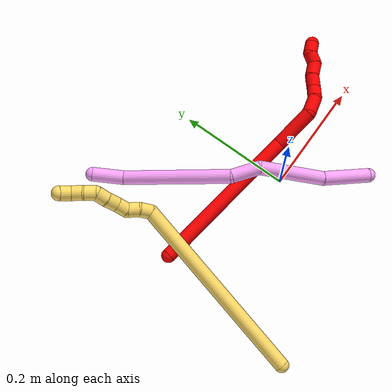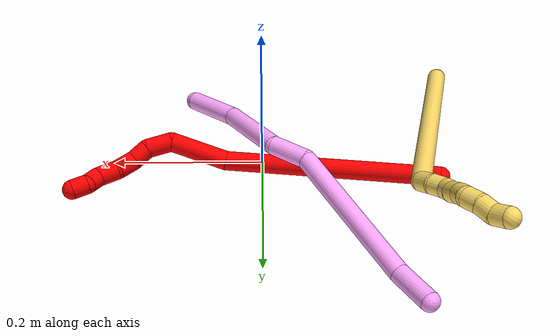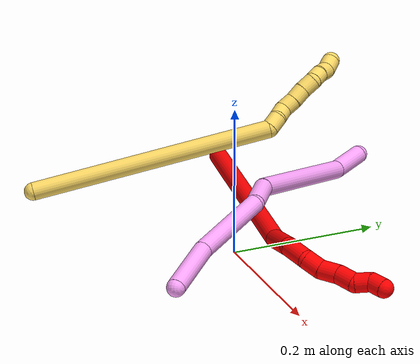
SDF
<sdf version="1.7">
 <world name="default">
  <model name="2">
   <static>0</static>
   <link name="2">
    <collision name="collision-cylinder-e_1_1_4">
     <pose>0.023464 0.006389 -0.13638 -3.09478 0.170199 -2.60588</pose>
     <geometry><cylinder><radius>0.0125</radius><length>0.277063</length></cylinder></geometry>
     <surface>
      <friction><ode><mu>1.16</mu><mu2>1.16</mu2><slip1>0</slip1><slip2>0</slip2></ode></friction>
      <contact><ode><kp>1e+06</kp><kd>1</kd><max_vel>0</max_vel><min_depth>0.001</min_depth></ode></contact>
     </surface>
    </collision>
    <visual name="visual-cylinder-e_1_1_4">
     <pose>0.023464 0.006389 -0.13638 -3.09478 0.170199 -2.60588</pose>
     <geometry><cylinder><radius>0.0125</radius><length>0.277063</length></cylinder></geometry>
     <material><ambient>1 0 0 1</ambient></material>
    </visual>
    <collision name="collision-cylinder-e_2_4_5">
     <pose>0.052109 0.003179 -0.308704 2.88061 0.138358 0.971559</pose>
     <geometry><cylinder><radius>0.0125</radius><length>0.075125</length></cylinder></geometry>
     <surface>
      <friction><ode><mu>1.16</mu><mu2>1.16</mu2><slip1>0</slip1><slip2>0</slip2></ode></friction>
      <contact><ode><kp>1e+06</kp><kd>1</kd><max_vel>0</max_vel><min_depth>0.001</min_depth></ode></contact>
     </surface>
    </collision>
    <visual name="visual-cylinder-e_2_4_5">
     <pose>0.052109 0.003179 -0.308704 2.88061 0.138358 0.971559</pose>
     <geometry><cylinder><radius>0.0125</radius><length>0.075125</length></cylinder></geometry>
     <material><ambient>1 0 0 1</ambient></material>
    </visual>
    <collision name="collision-cylinder-e_3_5_6">
     <pose>0.065848 -0.003235 -0.358193 -2.91065 0.551441 -2.36346</pose>
     <geometry><cylinder><radius>0.0125</radius><length>0.032672</length></cylinder></geometry>
     <surface>
      <friction><ode><mu>1.16</mu><mu2>1.16</mu2><slip1>0</slip1><slip2>0</slip2></ode></friction>
      <contact><ode><kp>1e+06</kp><kd>1</kd><max_vel>0</max_vel><min_depth>0.001</min_depth></ode></contact>
     </surface>
    </collision>
    <visual name="visual-cylinder-e_3_5_6">
     <pose>0.065848 -0.003235 -0.358193 -2.91065 0.551441 -2.36346</pose>
     <geometry><cylinder><radius>0.0125</radius><length>0.032672</length></cylinder></geometry>
     <material><ambient>1 0 0 1</ambient></material>
    </visual>
    <collision name="collision-cylinder-e_4_6_7">
     <pose>0.082656 0.005299 -0.377782 -2.41711 0.796323 -1.67492</pose>
     <geometry><cylinder><radius>0.0125</radius><length>0.023082</length></cylinder></geometry>
     <surface>
      <friction><ode><mu>1.16</mu><mu2>1.16</mu2><slip1>0</slip1><slip2>0</slip2></ode></friction>
      <contact><ode><kp>1e+06</kp><kd>1</kd><max_vel>0</max_vel><min_depth>0.001</min_depth></ode></contact>
     </surface>
    </collision>
    <visual name="visual-cylinder-e_4_6_7">
     <pose>0.082656 0.005299 -0.377782 -2.41711 0.796323 -1.67492</pose>
     <geometry><cylinder><radius>0.0125</radius><length>0.023082</length></cylinder></geometry>
     <material><ambient>1 0 0 1</ambient></material>
    </visual>
    <collision name="collision-cylinder-e_5_7_8">
     <pose>0.101569 0.012362 -0.390274 -2.88175 1.01166 -2.67829</pose>
     <geometry><cylinder><radius>0.0125</radius><length>0.025157</length></cylinder></geometry>
     <surface>
      <friction><ode><mu>1.16</mu><mu2>1.16</mu2><slip1>0</slip1><slip2>0</slip2></ode></friction>
      <contact><ode><kp>1e+06</kp><kd>1</kd><max_vel>0</max_vel><min_depth>0.001</min_depth></ode></contact>
     </surface>
    </collision>
    <visual name="visual-cylinder-e_5_7_8">
     <pose>0.101569 0.012362 -0.390274 -2.88175 1.01166 -2.67829</pose>
     <geometry><cylinder><radius>0.0125</radius><length>0.025157</length></cylinder></geometry>
     <material><ambient>1 0 0 1</ambient></material>
    </visual>
    <collision name="collision-cylinder-e_6_8_9">
     <pose>0.120717 0.016392 -0.406453 -2.908 0.703536 -2.52279</pose>
     <geometry><cylinder><radius>0.0125</radius><length>0.026232</length></cylinder></geometry>
     <surface>
      <friction><ode><mu>1.16</mu><mu2>1.16</mu2><slip1>0</slip1><slip2>0</slip2></ode></friction>
      <contact><ode><kp>1e+06</kp><kd>1</kd><max_vel>0</max_vel><min_depth>0.001</min_depth></ode></contact>
     </surface>
    </collision>
    <visual name="visual-cylinder-e_6_8_9">
     <pose>0.120717 0.016392 -0.406453 -2.908 0.703536 -2.52279</pose>
     <geometry><cylinder><radius>0.0125</radius><length>0.026232</length></cylinder></geometry>
     <material><ambient>1 0 0 1</ambient></material>
    </visual>
    <collision name="collision-cylinder-e_7_9_10">
     <pose>0.138999 0.017879 -0.418572 2.80809 1.31826 2.71372</pose>
     <geometry><cylinder><radius>0.0125</radius><length>0.020236</length></cylinder></geometry>
     <surface>
      <friction><ode><mu>1.16</mu><mu2>1.16</mu2><slip1>0</slip1><slip2>0</slip2></ode></friction>
      <contact><ode><kp>1e+06</kp><kd>1</kd><max_vel>0</max_vel><min_depth>0.001</min_depth></ode></contact>
     </surface>
    </collision>
    <visual name="visual-cylinder-e_7_9_10">
     <pose>0.138999 0.017879 -0.418572 2.80809 1.31826 2.71372</pose>
     <geometry><cylinder><radius>0.0125</radius><length>0.020236</length></cylinder></geometry>
     <material><ambient>1 0 0 1</ambient></material>
    </visual>
    <collision name="collision-cylinder-e_8_10_2">
     <pose>0.155493 0.018688 -0.4285 -2.92784 0.714845 -2.58211</pose>
     <geometry><cylinder><radius>0.0125</radius><length>0.020433</length></cylinder></geometry>
     <surface>
      <friction><ode><mu>1.16</mu><mu2>1.16</mu2><slip1>0</slip1><slip2>0</slip2></ode></friction>
      <contact><ode><kp>1e+06</kp><kd>1</kd><max_vel>0</max_vel><min_depth>0.001</min_depth></ode></contact>
     </surface>
    </collision>
    <visual name="visual-cylinder-e_8_10_2">
     <pose>0.155493 0.018688 -0.4285 -2.92784 0.714845 -2.58211</pose>
     <geometry><cylinder><radius>0.0125</radius><length>0.020433</length></cylinder></geometry>
     <material><ambient>1 0 0 1</ambient></material>
    </visual>
    <collision name="collision-sphere-2">
     <pose>0.16219 0.020325 -0.43604 0 -0 0</pose>
     <geometry><sphere><radius>0.0125</radius></sphere></geometry>
     <surface>
      <friction><ode><mu>1.16</mu><mu2>1.16</mu2><slip1>0</slip1><slip2>0</slip2></ode></friction>
      <contact><ode><kp>1e+06</kp><kd>1</kd><max_vel>0</max_vel><min_depth>0.001</min_depth></ode></contact>
     </surface>
    </collision>
    <visual name="visual-sphere-2">
     <pose>0.16219 0.020325 -0.43604 0 -0 0</pose>
     <geometry><sphere><radius>0.0125</radius></sphere></geometry>
     <material><ambient>1 0 0 1</ambient></material>
    </visual>
    <collision name="collision-sphere-10">
     <pose>0.148796 0.017052 -0.420961 0 -0 0</pose>
     <geometry><sphere><radius>0.0125</radius></sphere></geometry>
     <surface>
      <friction><ode><mu>1.16</mu><mu2>1.16</mu2><slip1>0</slip1><slip2>0</slip2></ode></friction>
      <contact><ode><kp>1e+06</kp><kd>1</kd><max_vel>0</max_vel><min_depth>0.001</min_depth></ode></contact>
     </surface>
    </collision>
    <visual name="visual-sphere-10">
     <pose>0.148796 0.017052 -0.420961 0 -0 0</pose>
     <geometry><sphere><radius>0.0125</radius></sphere></geometry>
     <material><ambient>1 0 0 1</ambient></material>
    </visual>
    <collision name="collision-sphere-9">
     <pose>0.129202 0.018707 -0.416183 0 -0 0</pose>
     <geometry><sphere><radius>0.0125</radius></sphere></geometry>
     <surface>
      <friction><ode><mu>1.16</mu><mu2>1.16</mu2><slip1>0</slip1><slip2>0</slip2></ode></friction>
      <contact><ode><kp>1e+06</kp><kd>1</kd><max_vel>0</max_vel><min_depth>0.001</min_depth></ode></contact>
     </surface>
    </collision>
    <visual name="visual-sphere-9">
     <pose>0.129202 0.018707 -0.416183 0 -0 0</pose>
     <geometry><sphere><radius>0.0125</radius></sphere></geometry>
     <material><ambient>1 0 0 1</ambient></material>
    </visual>
    <collision name="collision-sphere-4">
     <pose>0.046928 0.012779 -0.27276 0 -0 0</pose>
     <geometry><sphere><radius>0.0125</radius></sphere></geometry>
     <surface>
      <friction><ode><mu>1.16</mu><mu2>1.16</mu2><slip1>0</slip1><slip2>0</slip2></ode></friction>
      <contact><ode><kp>1e+06</kp><kd>1</kd><max_vel>0</max_vel><min_depth>0.001</min_depth></ode></contact>
     </surface>
    </collision>
    <visual name="visual-sphere-4">
     <pose>0.046928 0.012779 -0.27276 0 -0 0</pose>
     <geometry><sphere><radius>0.0125</radius></sphere></geometry>
     <material><ambient>1 0 0 1</ambient></material>
    </visual>
    <collision name="collision-sphere-1">
     <geometry><sphere><radius>0.0125</radius></sphere></geometry>
     <surface>
      <friction><ode><mu>1.16</mu><mu2>1.16</mu2><slip1>0</slip1><slip2>0</slip2></ode></friction>
      <contact><ode><kp>1e+06</kp><kd>1</kd><max_vel>0</max_vel><min_depth>0.001</min_depth></ode></contact>
     </surface>
    </collision>
    <visual name="visual-sphere-1">
     <geometry><sphere><radius>0.0125</radius></sphere></geometry>
     <material><ambient>1 0 0 1</ambient></material>
    </visual>
    <collision name="collision-sphere-8">
     <pose>0.112232 0.014077 -0.396723 0 -0 0</pose>
     <geometry><sphere><radius>0.0125</radius></sphere></geometry>
     <surface>
      <friction><ode><mu>1.16</mu><mu2>1.16</mu2><slip1>0</slip1><slip2>0</slip2></ode></friction>
      <contact><ode><kp>1e+06</kp><kd>1</kd><max_vel>0</max_vel><min_depth>0.001</min_depth></ode></contact>
     </surface>
    </collision>
    <visual name="visual-sphere-8">
     <pose>0.112232 0.014077 -0.396723 0 -0 0</pose>
     <geometry><sphere><radius>0.0125</radius></sphere></geometry>
     <material><ambient>1 0 0 1</ambient></material>
    </visual>
    <collision name="collision-sphere-5">
     <pose>0.057289 -0.00642 -0.344648 0 -0 0</pose>
     <geometry><sphere><radius>0.0125</radius></sphere></geometry>
     <surface>
      <friction><ode><mu>1.16</mu><mu2>1.16</mu2><slip1>0</slip1><slip2>0</slip2></ode></friction>
      <contact><ode><kp>1e+06</kp><kd>1</kd><max_vel>0</max_vel><min_depth>0.001</min_depth></ode></contact>
     </surface>
    </collision>
    <visual name="visual-sphere-5">
     <pose>0.057289 -0.00642 -0.344648 0 -0 0</pose>
     <geometry><sphere><radius>0.0125</radius></sphere></geometry>
     <material><ambient>1 0 0 1</ambient></material>
    </visual>
    <collision name="collision-sphere-6">
     <pose>0.074407 -5e-05 -0.371738 0 -0 0</pose>
     <geometry><sphere><radius>0.0125</radius></sphere></geometry>
     <surface>
      <friction><ode><mu>1.16</mu><mu2>1.16</mu2><slip1>0</slip1><slip2>0</slip2></ode></friction>
      <contact><ode><kp>1e+06</kp><kd>1</kd><max_vel>0</max_vel><min_depth>0.001</min_depth></ode></contact>
     </surface>
    </collision>
    <visual name="visual-sphere-6">
     <pose>0.074407 -5e-05 -0.371738 0 -0 0</pose>
     <geometry><sphere><radius>0.0125</radius></sphere></geometry>
     <material><ambient>1 0 0 1</ambient></material>
    </visual>
    <collision name="collision-sphere-7">
     <pose>0.090906 0.010648 -0.383826 0 -0 0</pose>
     <geometry><sphere><radius>0.0125</radius></sphere></geometry>
     <surface>
      <friction><ode><mu>1.16</mu><mu2>1.16</mu2><slip1>0</slip1><slip2>0</slip2></ode></friction>
      <contact><ode><kp>1e+06</kp><kd>1</kd><max_vel>0</max_vel><min_depth>0.001</min_depth></ode></contact>
     </surface>
    </collision>
    <visual name="visual-sphere-7">
     <pose>0.090906 0.010648 -0.383826 0 -0 0</pose>
     <geometry><sphere><radius>0.0125</radius></sphere></geometry>
     <material><ambient>1 0 0 1</ambient></material>
    </visual>
    <inertial>
     <pose>0.052374 0.007021 -0.238212 0 -0 0</pose>
     <mass>0.5</mass>
     <inertia>
      <ixx>-0.002356</ixx>
      <ixy>0</ixy>
      <ixz>0</ixz>
      <iyy>0.000661</iyy>
      <iyz>0</iyz>
      <izz>-0.000426</izz>
     </inertia>
    </inertial>
   </link>
   <pose>-0.227019 0.07579 0.036622 -1.59407 -0.062162 1.25876</pose>
  </model>
  <model name="4">
   <static>0</static>
   <link name="4">
    <collision name="collision-cylinder-e_1_1_4">
     <pose>0.014775 -0.023648 -0.002057 1.65754 0.556738 0.60435</pose>
     <geometry><cylinder><radius>0.0125</radius><length>0.05592</length></cylinder></geometry>
     <surface>
      <friction><ode><mu>1.16</mu><mu2>1.16</mu2><slip1>0</slip1><slip2>0</slip2></ode></friction>
      <contact><ode><kp>1e+06</kp><kd>1</kd><max_vel>0</max_vel><min_depth>0.001</min_depth></ode></contact>
     </surface>
    </collision>
    <visual name="visual-cylinder-e_1_1_4">
     <pose>0.014775 -0.023648 -0.002057 1.65754 0.556738 0.60435</pose>
     <geometry><cylinder><radius>0.0125</radius><length>0.05592</length></cylinder></geometry>
     <material><ambient>1 0.65098 0.996078 1</ambient></material>
    </visual>
    <collision name="collision-cylinder-e_2_4_5">
     <pose>0.099814 -0.111335 -0.022665 1.85277 0.811628 1.03885</pose>
     <geometry><cylinder><radius>0.0125</radius><length>0.193724</length></cylinder></geometry>
     <surface>
      <friction><ode><mu>1.16</mu><mu2>1.16</mu2><slip1>0</slip1><slip2>0</slip2></ode></friction>
      <contact><ode><kp>1e+06</kp><kd>1</kd><max_vel>0</max_vel><min_depth>0.001</min_depth></ode></contact>
     </surface>
    </collision>
    <visual name="visual-cylinder-e_2_4_5">
     <pose>0.099814 -0.111335 -0.022665 1.85277 0.811628 1.03885</pose>
     <geometry><cylinder><radius>0.0125</radius><length>0.193724</length></cylinder></geometry>
     <material><ambient>1 0.65098 0.996078 1</ambient></material>
    </visual>
    <collision name="collision-cylinder-e_3_5_6">
     <pose>0.180693 -0.195238 -0.052992 2.10592 0.430867 0.733484</pose>
     <geometry><cylinder><radius>0.0125</radius><length>0.050828</length></cylinder></geometry>
     <surface>
      <friction><ode><mu>1.16</mu><mu2>1.16</mu2><slip1>0</slip1><slip2>0</slip2></ode></friction>
      <contact><ode><kp>1e+06</kp><kd>1</kd><max_vel>0</max_vel><min_depth>0.001</min_depth></ode></contact>
     </surface>
    </collision>
    <visual name="visual-cylinder-e_3_5_6">
     <pose>0.180693 -0.195238 -0.052992 2.10592 0.430867 0.733484</pose>
     <geometry><cylinder><radius>0.0125</radius><length>0.050828</length></cylinder></geometry>
     <material><ambient>1 0.65098 0.996078 1</ambient></material>
    </visual>
    <collision name="collision-cylinder-e_4_6_7">
     <pose>0.214887 -0.267651 -0.065946 1.59321 0.421697 0.430965</pose>
     <geometry><cylinder><radius>0.0125</radius><length>0.115219</length></cylinder></geometry>
     <surface>
      <friction><ode><mu>1.16</mu><mu2>1.16</mu2><slip1>0</slip1><slip2>0</slip2></ode></friction>
      <contact><ode><kp>1e+06</kp><kd>1</kd><max_vel>0</max_vel><min_depth>0.001</min_depth></ode></contact>
     </surface>
    </collision>
    <visual name="visual-cylinder-e_4_6_7">
     <pose>0.214887 -0.267651 -0.065946 1.59321 0.421697 0.430965</pose>
     <geometry><cylinder><radius>0.0125</radius><length>0.115219</length></cylinder></geometry>
     <material><ambient>1 0.65098 0.996078 1</ambient></material>
    </visual>
    <collision name="collision-cylinder-e_5_7_2">
     <pose>0.253495 -0.358244 -0.077311 1.83243 0.364513 0.471364</pose>
     <geometry><cylinder><radius>0.0125</radius><length>0.084308</length></cylinder></geometry>
     <surface>
      <friction><ode><mu>1.16</mu><mu2>1.16</mu2><slip1>0</slip1><slip2>0</slip2></ode></friction>
      <contact><ode><kp>1e+06</kp><kd>1</kd><max_vel>0</max_vel><min_depth>0.001</min_depth></ode></contact>
     </surface>
    </collision>
    <visual name="visual-cylinder-e_5_7_2">
     <pose>0.253495 -0.358244 -0.077311 1.83243 0.364513 0.471364</pose>
     <geometry><cylinder><radius>0.0125</radius><length>0.084308</length></cylinder></geometry>
     <material><ambient>1 0.65098 0.996078 1</ambient></material>
    </visual>
    <collision name="collision-sphere-2">
     <pose>0.268523 -0.396289 -0.087498 0 -0 0</pose>
     <geometry><sphere><radius>0.0125</radius></sphere></geometry>
     <surface>
      <friction><ode><mu>1.16</mu><mu2>1.16</mu2><slip1>0</slip1><slip2>0</slip2></ode></friction>
      <contact><ode><kp>1e+06</kp><kd>1</kd><max_vel>0</max_vel><min_depth>0.001</min_depth></ode></contact>
     </surface>
    </collision>
    <visual name="visual-sphere-2">
     <pose>0.268523 -0.396289 -0.087498 0 -0 0</pose>
     <geometry><sphere><radius>0.0125</radius></sphere></geometry>
     <material><ambient>1 0.65098 0.996078 1</ambient></material>
    </visual>
    <collision name="collision-sphere-7">
     <pose>0.238468 -0.3202 -0.067123 0 -0 0</pose>
     <geometry><sphere><radius>0.0125</radius></sphere></geometry>
     <surface>
      <friction><ode><mu>1.16</mu><mu2>1.16</mu2><slip1>0</slip1><slip2>0</slip2></ode></friction>
      <contact><ode><kp>1e+06</kp><kd>1</kd><max_vel>0</max_vel><min_depth>0.001</min_depth></ode></contact>
     </surface>
    </collision>
    <visual name="visual-sphere-7">
     <pose>0.238468 -0.3202 -0.067123 0 -0 0</pose>
     <geometry><sphere><radius>0.0125</radius></sphere></geometry>
     <material><ambient>1 0.65098 0.996078 1</ambient></material>
    </visual>
    <collision name="collision-sphere-6">
     <pose>0.191307 -0.215101 -0.064768 0 -0 0</pose>
     <geometry><sphere><radius>0.0125</radius></sphere></geometry>
     <surface>
      <friction><ode><mu>1.16</mu><mu2>1.16</mu2><slip1>0</slip1><slip2>0</slip2></ode></friction>
      <contact><ode><kp>1e+06</kp><kd>1</kd><max_vel>0</max_vel><min_depth>0.001</min_depth></ode></contact>
     </surface>
    </collision>
    <visual name="visual-sphere-6">
     <pose>0.191307 -0.215101 -0.064768 0 -0 0</pose>
     <geometry><sphere><radius>0.0125</radius></sphere></geometry>
     <material><ambient>1 0.65098 0.996078 1</ambient></material>
    </visual>
    <collision name="collision-sphere-5">
     <pose>0.170078 -0.175374 -0.041217 0 -0 0</pose>
     <geometry><sphere><radius>0.0125</radius></sphere></geometry>
     <surface>
      <friction><ode><mu>1.16</mu><mu2>1.16</mu2><slip1>0</slip1><slip2>0</slip2></ode></friction>
      <contact><ode><kp>1e+06</kp><kd>1</kd><max_vel>0</max_vel><min_depth>0.001</min_depth></ode></contact>
     </surface>
    </collision>
    <visual name="visual-sphere-5">
     <pose>0.170078 -0.175374 -0.041217 0 -0 0</pose>
     <geometry><sphere><radius>0.0125</radius></sphere></geometry>
     <material><ambient>1 0.65098 0.996078 1</ambient></material>
    </visual>
    <collision name="collision-sphere-1">
     <geometry><sphere><radius>0.0125</radius></sphere></geometry>
     <surface>
      <friction><ode><mu>1.16</mu><mu2>1.16</mu2><slip1>0</slip1><slip2>0</slip2></ode></friction>
      <contact><ode><kp>1e+06</kp><kd>1</kd><max_vel>0</max_vel><min_depth>0.001</min_depth></ode></contact>
     </surface>
    </collision>
    <visual name="visual-sphere-1">
     <geometry><sphere><radius>0.0125</radius></sphere></geometry>
     <material><ambient>1 0.65098 0.996078 1</ambient></material>
    </visual>
    <collision name="collision-sphere-4">
     <pose>0.029549 -0.047296 -0.004113 0 -0 0</pose>
     <geometry><sphere><radius>0.0125</radius></sphere></geometry>
     <surface>
      <friction><ode><mu>1.16</mu><mu2>1.16</mu2><slip1>0</slip1><slip2>0</slip2></ode></friction>
      <contact><ode><kp>1e+06</kp><kd>1</kd><max_vel>0</max_vel><min_depth>0.001</min_depth></ode></contact>
     </surface>
    </collision>
    <visual name="visual-sphere-4">
     <pose>0.029549 -0.047296 -0.004113 0 -0 0</pose>
     <geometry><sphere><radius>0.0125</radius></sphere></geometry>
     <material><ambient>1 0.65098 0.996078 1</ambient></material>
    </visual>
    <inertial>
     <pose>0.150956 -0.187712 -0.042631 0 -0 0</pose>
     <mass>0.5</mass>
     <inertia>
      <ixx>0.000862</ixx>
      <ixy>0</ixy>
      <ixz>0</ixz>
      <iyy>0.000721</iyy>
      <iyz>0</iyz>
      <izz>5.9e-05</izz>
     </inertia>
    </inertial>
   </link>
   <pose>-0.186484 0.273642 0.021065 1.99885 -0.867441 -1.47538</pose>
  </model>
  <model name="5">
   <static>0</static>
   <link name="5">
    <collision name="collision-cylinder-e_1_1_4">
     <pose>-0.040681 0.149305 -0.066925 -1.99219 -0.243692 0.373749</pose>
     <geometry><cylinder><radius>0.0125</radius><length>0.337199</length></cylinder></geometry>
     <surface>
      <friction><ode><mu>1.16</mu><mu2>1.16</mu2><slip1>0</slip1><slip2>0</slip2></ode></friction>
      <contact><ode><kp>1e+06</kp><kd>1</kd><max_vel>0</max_vel><min_depth>0.001</min_depth></ode></contact>
     </surface>
    </collision>
    <visual name="visual-cylinder-e_1_1_4">
     <pose>-0.040681 0.149305 -0.066925 -1.99219 -0.243692 0.373749</pose>
     <geometry><cylinder><radius>0.0125</radius><length>0.337199</length></cylinder></geometry>
     <material><ambient>1 0.858824 0.4 1</ambient></material>
    </visual>
    <collision name="collision-cylinder-e_2_4_5">
     <pose>-0.088154 0.30692 -0.131492 -1.29418 -0.666249 0.511471</pose>
     <geometry><cylinder><radius>0.0125</radius><length>0.021979</length></cylinder></geometry>
     <surface>
      <friction><ode><mu>1.16</mu><mu2>1.16</mu2><slip1>0</slip1><slip2>0</slip2></ode></friction>
      <contact><ode><kp>1e+06</kp><kd>1</kd><max_vel>0</max_vel><min_depth>0.001</min_depth></ode></contact>
     </surface>
    </collision>
    <visual name="visual-cylinder-e_2_4_5">
     <pose>-0.088154 0.30692 -0.131492 -1.29418 -0.666249 0.511471</pose>
     <geometry><cylinder><radius>0.0125</radius><length>0.021979</length></cylinder></geometry>
     <material><ambient>1 0.858824 0.4 1</ambient></material>
    </visual>
    <collision name="collision-cylinder-e_3_5_6">
     <pose>-0.103217 0.320547 -0.126935 -1.17881 -0.963137 0.672393</pose>
     <geometry><cylinder><radius>0.0125</radius><length>0.020151</length></cylinder></geometry>
     <surface>
      <friction><ode><mu>1.16</mu><mu2>1.16</mu2><slip1>0</slip1><slip2>0</slip2></ode></friction>
      <contact><ode><kp>1e+06</kp><kd>1</kd><max_vel>0</max_vel><min_depth>0.001</min_depth></ode></contact>
     </surface>
    </collision>
    <visual name="visual-cylinder-e_3_5_6">
     <pose>-0.103217 0.320547 -0.126935 -1.17881 -0.963137 0.672393</pose>
     <geometry><cylinder><radius>0.0125</radius><length>0.020151</length></cylinder></geometry>
     <material><ambient>1 0.858824 0.4 1</ambient></material>
    </visual>
    <collision name="collision-cylinder-e_4_6_7">
     <pose>-0.115722 0.33495 -0.124365 -1.52991 -0.435613 0.418671</pose>
     <geometry><cylinder><radius>0.0125</radius><length>0.020062</length></cylinder></geometry>
     <surface>
      <friction><ode><mu>1.16</mu><mu2>1.16</mu2><slip1>0</slip1><slip2>0</slip2></ode></friction>
      <contact><ode><kp>1e+06</kp><kd>1</kd><max_vel>0</max_vel><min_depth>0.001</min_depth></ode></contact>
     </surface>
    </collision>
    <visual name="visual-cylinder-e_4_6_7">
     <pose>-0.115722 0.33495 -0.124365 -1.52991 -0.435613 0.418671</pose>
     <geometry><cylinder><radius>0.0125</radius><length>0.020062</length></cylinder></geometry>
     <material><ambient>1 0.858824 0.4 1</ambient></material>
    </visual>
    <collision name="collision-cylinder-e_5_7_8">
     <pose>-0.124198 0.352987 -0.122167 -1.36954 -0.434827 0.356936</pose>
     <geometry><cylinder><radius>0.0125</radius><length>0.020145</length></cylinder></geometry>
     <surface>
      <friction><ode><mu>1.16</mu><mu2>1.16</mu2><slip1>0</slip1><slip2>0</slip2></ode></friction>
      <contact><ode><kp>1e+06</kp><kd>1</kd><max_vel>0</max_vel><min_depth>0.001</min_depth></ode></contact>
     </surface>
    </collision>
    <visual name="visual-cylinder-e_5_7_8">
     <pose>-0.124198 0.352987 -0.122167 -1.36954 -0.434827 0.356936</pose>
     <geometry><cylinder><radius>0.0125</radius><length>0.020145</length></cylinder></geometry>
     <material><ambient>1 0.858824 0.4 1</ambient></material>
    </visual>
    <collision name="collision-cylinder-e_6_8_9">
     <pose>-0.132331 0.371328 -0.119813 -1.51462 -0.392253 0.371316</pose>
     <geometry><cylinder><radius>0.0125</radius><length>0.020356</length></cylinder></geometry>
     <surface>
      <friction><ode><mu>1.16</mu><mu2>1.16</mu2><slip1>0</slip1><slip2>0</slip2></ode></friction>
      <contact><ode><kp>1e+06</kp><kd>1</kd><max_vel>0</max_vel><min_depth>0.001</min_depth></ode></contact>
     </surface>
    </collision>
    <visual name="visual-cylinder-e_6_8_9">
     <pose>-0.132331 0.371328 -0.119813 -1.51462 -0.392253 0.371316</pose>
     <geometry><cylinder><radius>0.0125</radius><length>0.020356</length></cylinder></geometry>
     <material><ambient>1 0.858824 0.4 1</ambient></material>
    </visual>
    <collision name="collision-cylinder-e_7_9_10">
     <pose>-0.144572 0.386134 -0.118232 -1.37877 -0.98689 0.83458</pose>
     <geometry><cylinder><radius>0.0125</radius><length>0.020017</length></cylinder></geometry>
     <surface>
      <friction><ode><mu>1.16</mu><mu2>1.16</mu2><slip1>0</slip1><slip2>0</slip2></ode></friction>
      <contact><ode><kp>1e+06</kp><kd>1</kd><max_vel>0</max_vel><min_depth>0.001</min_depth></ode></contact>
     </surface>
    </collision>
    <visual name="visual-cylinder-e_7_9_10">
     <pose>-0.144572 0.386134 -0.118232 -1.37877 -0.98689 0.83458</pose>
     <geometry><cylinder><radius>0.0125</radius><length>0.020017</length></cylinder></geometry>
     <material><ambient>1 0.858824 0.4 1</ambient></material>
    </visual>
    <collision name="collision-cylinder-e_8_10_11">
     <pose>-0.161936 0.395856 -0.118008 -1.76101 -1.11801 1.29657</pose>
     <geometry><cylinder><radius>0.0125</radius><length>0.020046</length></cylinder></geometry>
     <surface>
      <friction><ode><mu>1.16</mu><mu2>1.16</mu2><slip1>0</slip1><slip2>0</slip2></ode></friction>
      <contact><ode><kp>1e+06</kp><kd>1</kd><max_vel>0</max_vel><min_depth>0.001</min_depth></ode></contact>
     </surface>
    </collision>
    <visual name="visual-cylinder-e_8_10_11">
     <pose>-0.161936 0.395856 -0.118008 -1.76101 -1.11801 1.29657</pose>
     <geometry><cylinder><radius>0.0125</radius><length>0.020046</length></cylinder></geometry>
     <material><ambient>1 0.858824 0.4 1</ambient></material>
    </visual>
    <collision name="collision-cylinder-e_9_11_2">
     <pose>-0.178348 0.406198 -0.115794 -1.10381 -0.830548 0.530189</pose>
     <geometry><cylinder><radius>0.0125</radius><length>0.020046</length></cylinder></geometry>
     <surface>
      <friction><ode><mu>1.16</mu><mu2>1.16</mu2><slip1>0</slip1><slip2>0</slip2></ode></friction>
      <contact><ode><kp>1e+06</kp><kd>1</kd><max_vel>0</max_vel><min_depth>0.001</min_depth></ode></contact>
     </surface>
    </collision>
    <visual name="visual-cylinder-e_9_11_2">
     <pose>-0.178348 0.406198 -0.115794 -1.10381 -0.830548 0.530189</pose>
     <geometry><cylinder><radius>0.0125</radius><length>0.020046</length></cylinder></geometry>
     <material><ambient>1 0.858824 0.4 1</ambient></material>
    </visual>
    <collision name="collision-sphere-2">
     <pose>-0.185748 0.412234 -0.11275 0 -0 0</pose>
     <geometry><sphere><radius>0.0125</radius></sphere></geometry>
     <surface>
      <friction><ode><mu>1.16</mu><mu2>1.16</mu2><slip1>0</slip1><slip2>0</slip2></ode></friction>
      <contact><ode><kp>1e+06</kp><kd>1</kd><max_vel>0</max_vel><min_depth>0.001</min_depth></ode></contact>
     </surface>
    </collision>
    <visual name="visual-sphere-2">
     <pose>-0.185748 0.412234 -0.11275 0 -0 0</pose>
     <geometry><sphere><radius>0.0125</radius></sphere></geometry>
     <material><ambient>1 0.858824 0.4 1</ambient></material>
    </visual>
    <collision name="collision-sphere-11">
     <pose>-0.170949 0.400161 -0.118837 0 -0 0</pose>
     <geometry><sphere><radius>0.0125</radius></sphere></geometry>
     <surface>
      <friction><ode><mu>1.16</mu><mu2>1.16</mu2><slip1>0</slip1><slip2>0</slip2></ode></friction>
      <contact><ode><kp>1e+06</kp><kd>1</kd><max_vel>0</max_vel><min_depth>0.001</min_depth></ode></contact>
     </surface>
    </collision>
    <visual name="visual-sphere-11">
     <pose>-0.170949 0.400161 -0.118837 0 -0 0</pose>
     <geometry><sphere><radius>0.0125</radius></sphere></geometry>
     <material><ambient>1 0.858824 0.4 1</ambient></material>
    </visual>
    <collision name="collision-sphere-10">
     <pose>-0.152923 0.39155 -0.117179 0 -0 0</pose>
     <geometry><sphere><radius>0.0125</radius></sphere></geometry>
     <surface>
      <friction><ode><mu>1.16</mu><mu2>1.16</mu2><slip1>0</slip1><slip2>0</slip2></ode></friction>
      <contact><ode><kp>1e+06</kp><kd>1</kd><max_vel>0</max_vel><min_depth>0.001</min_depth></ode></contact>
     </surface>
    </collision>
    <visual name="visual-sphere-10">
     <pose>-0.152923 0.39155 -0.117179 0 -0 0</pose>
     <geometry><sphere><radius>0.0125</radius></sphere></geometry>
     <material><ambient>1 0.858824 0.4 1</ambient></material>
    </visual>
    <collision name="collision-sphere-9">
     <pose>-0.136222 0.380718 -0.119285 0 -0 0</pose>
     <geometry><sphere><radius>0.0125</radius></sphere></geometry>
     <surface>
      <friction><ode><mu>1.16</mu><mu2>1.16</mu2><slip1>0</slip1><slip2>0</slip2></ode></friction>
      <contact><ode><kp>1e+06</kp><kd>1</kd><max_vel>0</max_vel><min_depth>0.001</min_depth></ode></contact>
     </surface>
    </collision>
    <visual name="visual-sphere-9">
     <pose>-0.136222 0.380718 -0.119285 0 -0 0</pose>
     <geometry><sphere><radius>0.0125</radius></sphere></geometry>
     <material><ambient>1 0.858824 0.4 1</ambient></material>
    </visual>
    <collision name="collision-sphere-4">
     <pose>-0.081362 0.298609 -0.133851 0 -0 0</pose>
     <geometry><sphere><radius>0.0125</radius></sphere></geometry>
     <surface>
      <friction><ode><mu>1.16</mu><mu2>1.16</mu2><slip1>0</slip1><slip2>0</slip2></ode></friction>
      <contact><ode><kp>1e+06</kp><kd>1</kd><max_vel>0</max_vel><min_depth>0.001</min_depth></ode></contact>
     </surface>
    </collision>
    <visual name="visual-sphere-4">
     <pose>-0.081362 0.298609 -0.133851 0 -0 0</pose>
     <geometry><sphere><radius>0.0125</radius></sphere></geometry>
     <material><ambient>1 0.858824 0.4 1</ambient></material>
    </visual>
    <collision name="collision-sphere-1">
     <geometry><sphere><radius>0.0125</radius></sphere></geometry>
     <surface>
      <friction><ode><mu>1.16</mu><mu2>1.16</mu2><slip1>0</slip1><slip2>0</slip2></ode></friction>
      <contact><ode><kp>1e+06</kp><kd>1</kd><max_vel>0</max_vel><min_depth>0.001</min_depth></ode></contact>
     </surface>
    </collision>
    <visual name="visual-sphere-1">
     <geometry><sphere><radius>0.0125</radius></sphere></geometry>
     <material><ambient>1 0.858824 0.4 1</ambient></material>
    </visual>
    <collision name="collision-sphere-8">
     <pose>-0.128441 0.361937 -0.120341 0 -0 0</pose>
     <geometry><sphere><radius>0.0125</radius></sphere></geometry>
     <surface>
      <friction><ode><mu>1.16</mu><mu2>1.16</mu2><slip1>0</slip1><slip2>0</slip2></ode></friction>
      <contact><ode><kp>1e+06</kp><kd>1</kd><max_vel>0</max_vel><min_depth>0.001</min_depth></ode></contact>
     </surface>
    </collision>
    <visual name="visual-sphere-8">
     <pose>-0.128441 0.361937 -0.120341 0 -0 0</pose>
     <geometry><sphere><radius>0.0125</radius></sphere></geometry>
     <material><ambient>1 0.858824 0.4 1</ambient></material>
    </visual>
    <collision name="collision-sphere-5">
     <pose>-0.094945 0.315231 -0.129132 0 -0 0</pose>
     <geometry><sphere><radius>0.0125</radius></sphere></geometry>
     <surface>
      <friction><ode><mu>1.16</mu><mu2>1.16</mu2><slip1>0</slip1><slip2>0</slip2></ode></friction>
      <contact><ode><kp>1e+06</kp><kd>1</kd><max_vel>0</max_vel><min_depth>0.001</min_depth></ode></contact>
     </surface>
    </collision>
    <visual name="visual-sphere-5">
     <pose>-0.094945 0.315231 -0.129132 0 -0 0</pose>
     <geometry><sphere><radius>0.0125</radius></sphere></geometry>
     <material><ambient>1 0.858824 0.4 1</ambient></material>
    </visual>
    <collision name="collision-sphere-6">
     <pose>-0.111489 0.325863 -0.124737 0 -0 0</pose>
     <geometry><sphere><radius>0.0125</radius></sphere></geometry>
     <surface>
      <friction><ode><mu>1.16</mu><mu2>1.16</mu2><slip1>0</slip1><slip2>0</slip2></ode></friction>
      <contact><ode><kp>1e+06</kp><kd>1</kd><max_vel>0</max_vel><min_depth>0.001</min_depth></ode></contact>
     </surface>
    </collision>
    <visual name="visual-sphere-6">
     <pose>-0.111489 0.325863 -0.124737 0 -0 0</pose>
     <geometry><sphere><radius>0.0125</radius></sphere></geometry>
     <material><ambient>1 0.858824 0.4 1</ambient></material>
    </visual>
    <collision name="collision-sphere-7">
     <pose>-0.119954 0.344036 -0.123993 0 -0 0</pose>
     <geometry><sphere><radius>0.0125</radius></sphere></geometry>
     <surface>
      <friction><ode><mu>1.16</mu><mu2>1.16</mu2><slip1>0</slip1><slip2>0</slip2></ode></friction>
      <contact><ode><kp>1e+06</kp><kd>1</kd><max_vel>0</max_vel><min_depth>0.001</min_depth></ode></contact>
     </surface>
    </collision>
    <visual name="visual-sphere-7">
     <pose>-0.119954 0.344036 -0.123993 0 -0 0</pose>
     <geometry><sphere><radius>0.0125</radius></sphere></geometry>
     <material><ambient>1 0.858824 0.4 1</ambient></material>
    </visual>
    <inertial>
     <pose>-0.069935 0.217494 -0.084927 0 -0 0</pose>
     <mass>0.5</mass>
     <inertia>
      <ixx>0.004032</ixx>
      <ixy>0</ixy>
      <ixz>0</ixz>
      <iyy>0.000216</iyy>
      <iyz>0</iyz>
      <izz>-0.002076</izz>
     </inertia>
    </inertial>
   </link>
   <pose>-0.263712 -0.185222 0.012163 0.718318 -0.288761 -0.550227</pose>
  </model>
 </world>
</sdf>
